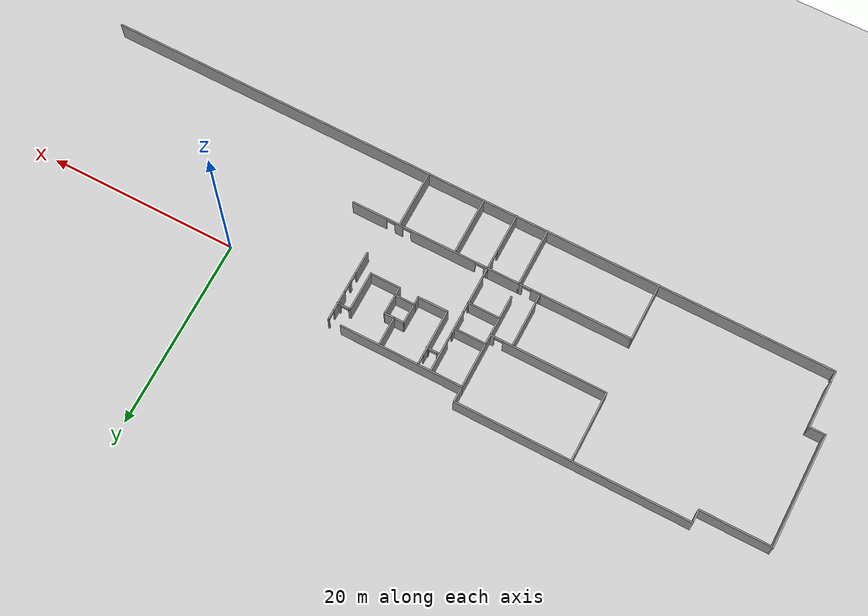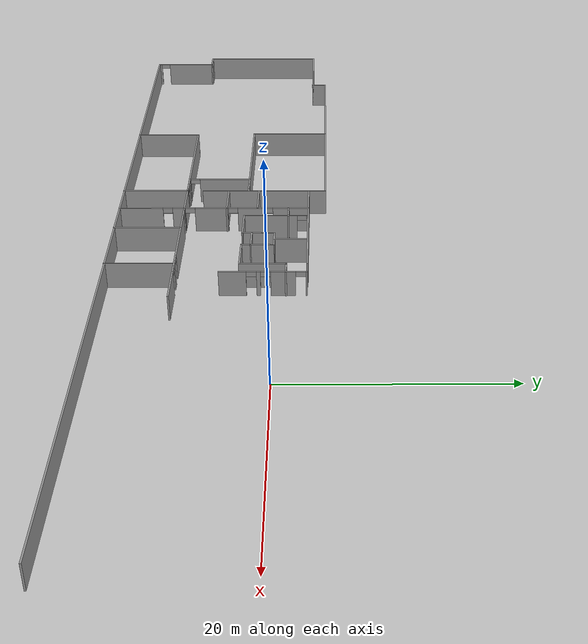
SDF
<sdf version="1.7">
 <world name="default">
  <model name="ground_plane">
   <static>1</static>
   <link name="link">
    <collision name="collision">
     <geometry><plane><normal>0 0 1</normal><size>100 100</size></plane></geometry>
     <surface><friction><ode><mu>100</mu><mu2>50</mu2></ode></friction></surface>
    </collision>
    <visual name="visual">
     <cast_shadows>0</cast_shadows>
     <geometry><plane><normal>0 0 1</normal><size>100 100</size></plane></geometry>
     <material>
      <script><uri>file://media/materials/scripts/gazebo.material</uri><name>Gazebo/Grey</name></script>
     </material>
    </visual>
   </link>
  </model>
  <model name="4th_floor_full">
   <pose>-18.2329 -5.23028 0 0 -0 3.13626</pose>
   <link name="Wall_100">
    <collision name="Wall_100_Collision">
     <geometry><box><size>1.18449 0.15 2.5</size></box></geometry>
     <pose>0 0 1.25 0 -0 0</pose>
    </collision>
    <visual name="Wall_100_Visual">
     <pose>0 0 1.25 0 -0 0</pose>
     <geometry><box><size>1.18449 0.15 2.5</size></box></geometry>
     <material>
      <script><uri>file://media/materials/scripts/gazebo.material</uri><name>Gazebo/Grey</name></script>
      <ambient>1 1 1 1</ambient>
     </material>
     <meta><layer>0</layer></meta>
    </visual>
    <pose>0.19827 -5.05997 0 0 -0 0.005985</pose>
   </link>
   <link name="Wall_101">
    <collision name="Wall_101_Collision">
     <geometry><box><size>2.2151 0.15 2.5</size></box></geometry>
     <pose>0 0 1.25 0 -0 0</pose>
    </collision>
    <visual name="Wall_101_Visual">
     <pose>0 0 1.25 0 -0 0</pose>
     <geometry><box><size>2.2151 0.15 2.5</size></box></geometry>
     <material>
      <script><uri>file://media/materials/scripts/gazebo.material</uri><name>Gazebo/Grey</name></script>
      <ambient>1 1 1 1</ambient>
     </material>
     <meta><layer>0</layer></meta>
    </visual>
    <pose>0.72251 -4.02435 0 0 -0 1.56402</pose>
   </link>
   <link name="Wall_103">
    <collision name="Wall_103_Collision">
     <geometry><box><size>1.14162 0.15 2.5</size></box></geometry>
     <pose>0 0 1.25 0 -0 0</pose>
    </collision>
    <visual name="Wall_103_Visual">
     <pose>0 0 1.25 0 -0 0</pose>
     <geometry><box><size>1.14162 0.15 2.5</size></box></geometry>
     <material>
      <script><uri>file://media/materials/scripts/gazebo.material</uri><name>Gazebo/Grey</name></script>
      <ambient>1 1 1 1</ambient>
     </material>
     <meta><layer>0</layer></meta>
    </visual>
    <pose>-0.814774 -5.05997 0 0 -0 3.13535</pose>
   </link>
   <link name="Wall_104">
    <collision name="Wall_104_Collision">
     <geometry><box><size>2.21041 0.15 2.5</size></box></geometry>
     <pose>0 0 1.25 0 -0 0</pose>
    </collision>
    <visual name="Wall_104_Visual">
     <pose>0 0 1.25 0 -0 0</pose>
     <geometry><box><size>2.21041 0.15 2.5</size></box></geometry>
     <material>
      <script><uri>file://media/materials/scripts/gazebo.material</uri><name>Gazebo/Grey</name></script>
      <ambient>1 1 1 1</ambient>
     </material>
     <meta><layer>0</layer></meta>
    </visual>
    <pose>-1.305 -4.02668 0 0 -0 1.56538</pose>
   </link>
   <link name="Wall_106">
    <collision name="Wall_106_Collision">
     <geometry><box><size>7.5 0.15 2.5</size></box></geometry>
     <pose>0 0 1.25 0 -0 0</pose>
    </collision>
    <visual name="Wall_106_Visual">
     <pose>0 0 1.25 0 -0 0</pose>
     <geometry><box><size>7.5 0.15 2.5</size></box></geometry>
     <material>
      <script><uri>file://media/materials/scripts/gazebo.material</uri><name>Gazebo/Grey</name></script>
      <ambient>1 1 1 1</ambient>
     </material>
     <meta><layer>0</layer></meta>
    </visual>
    <pose>20.6058 -5.98067 0 0 -0 1.5708</pose>
   </link>
   <link name="Wall_108">
    <pose>14.5558 -2.30567 0 0 -0 3.14159</pose>
    <visual name="Wall_108_Visual_0">
     <pose>-0.69819 0 1.25 0 -0 0</pose>
     <geometry><box><size>10.8536 0.15 2.5</size></box></geometry>
     <material>
      <script><uri>file://media/materials/scripts/gazebo.material</uri><name>Gazebo/Grey</name></script>
      <ambient>1 1 1 1</ambient>
     </material>
     <meta><layer>0</layer></meta>
    </visual>
    <collision name="Wall_108_Collision_0">
     <geometry><box><size>10.8536 0.15 2.5</size></box></geometry>
     <pose>-0.69819 0 1.25 0 -0 0</pose>
    </collision>
    <visual name="Wall_108_Visual_1">
     <pose>5.87681 0 1.25 0 -0 0</pose>
     <geometry><box><size>0.496381 0.15 2.5</size></box></geometry>
     <material>
      <script><uri>file://media/materials/scripts/gazebo.material</uri><name>Gazebo/Grey</name></script>
      <ambient>1 1 1 1</ambient>
     </material>
     <meta><layer>0</layer></meta>
    </visual>
    <collision name="Wall_108_Collision_1">
     <geometry><box><size>0.496381 0.15 2.5</size></box></geometry>
     <pose>5.87681 0 1.25 0 -0 0</pose>
    </collision>
    <visual name="Wall_108_Visual_2">
     <pose>5.17862 0 2.25 0 -0 0</pose>
     <geometry><box><size>0.9 0.15 0.5</size></box></geometry>
     <material>
      <script><uri>file://media/materials/scripts/gazebo.material</uri><name>Gazebo/Grey</name></script>
      <ambient>1 1 1 1</ambient>
     </material>
     <meta><layer>0</layer></meta>
    </visual>
    <collision name="Wall_108_Collision_2">
     <geometry><box><size>0.9 0.15 0.5</size></box></geometry>
     <pose>5.17862 0 2.25 0 -0 0</pose>
    </collision>
   </link>
   <link name="Wall_110">
    <collision name="Wall_110_Collision">
     <geometry><box><size>12 0.15 2.5</size></box></geometry>
     <pose>0 0 1.25 0 -0 0</pose>
    </collision>
    <visual name="Wall_110_Visual">
     <pose>0 0 1.25 0 -0 0</pose>
     <geometry><box><size>12 0.15 2.5</size></box></geometry>
     <material>
      <script><uri>file://media/materials/scripts/gazebo.material</uri><name>Gazebo/Grey</name></script>
      <ambient>1 1 1 1</ambient>
     </material>
     <meta><layer>0</layer></meta>
    </visual>
    <pose>40.1925 -2.41314 0 0 -0 1.5708</pose>
   </link>
   <link name="Wall_111">
    <collision name="Wall_111_Collision">
     <geometry><box><size>1.75 0.15 2.5</size></box></geometry>
     <pose>0 0 1.25 0 -0 0</pose>
    </collision>
    <visual name="Wall_111_Visual">
     <pose>0 0 1.25 0 -0 0</pose>
     <geometry><box><size>1.75 0.15 2.5</size></box></geometry>
     <material>
      <script><uri>file://media/materials/scripts/gazebo.material</uri><name>Gazebo/Grey</name></script>
      <ambient>1 1 1 1</ambient>
     </material>
     <meta><layer>0</layer></meta>
    </visual>
    <pose>39.3925 3.51186 0 0 -0 3.14159</pose>
   </link>
   <link name="Wall_113">
    <pose>38.5925 6.56186 0 0 -0 1.5708</pose>
    <visual name="Wall_113_Visual_0">
     <pose>-0.629068 0 1.25 0 -0 0</pose>
     <geometry><box><size>4.99186 0.15 2.5</size></box></geometry>
     <material>
      <script><uri>file://media/materials/scripts/gazebo.material</uri><name>Gazebo/Grey</name></script>
      <ambient>1 1 1 1</ambient>
     </material>
     <meta><layer>0</layer></meta>
    </visual>
    <collision name="Wall_113_Collision_0">
     <geometry><box><size>4.99186 0.15 2.5</size></box></geometry>
     <pose>-0.629068 0 1.25 0 -0 0</pose>
    </collision>
    <visual name="Wall_113_Visual_1">
     <pose>2.94593 0 1.25 0 -0 0</pose>
     <geometry><box><size>0.358137 0.15 2.5</size></box></geometry>
     <material>
      <script><uri>file://media/materials/scripts/gazebo.material</uri><name>Gazebo/Grey</name></script>
      <ambient>1 1 1 1</ambient>
     </material>
     <meta><layer>0</layer></meta>
    </visual>
    <collision name="Wall_113_Collision_1">
     <geometry><box><size>0.358137 0.15 2.5</size></box></geometry>
     <pose>2.94593 0 1.25 0 -0 0</pose>
    </collision>
    <visual name="Wall_113_Visual_2">
     <pose>2.31686 0 2.25 0 -0 0</pose>
     <geometry><box><size>0.9 0.15 0.5</size></box></geometry>
     <material>
      <script><uri>file://media/materials/scripts/gazebo.material</uri><name>Gazebo/Grey</name></script>
      <ambient>1 1 1 1</ambient>
     </material>
     <meta><layer>0</layer></meta>
    </visual>
    <collision name="Wall_113_Collision_2">
     <geometry><box><size>0.9 0.15 0.5</size></box></geometry>
     <pose>2.31686 0 2.25 0 -0 0</pose>
    </collision>
   </link>
   <link name="Wall_117">
    <collision name="Wall_117_Collision">
     <geometry><box><size>78.0898 0.15 2.5</size></box></geometry>
     <pose>0 0 1.25 0 -0 0</pose>
    </collision>
    <visual name="Wall_117_Visual">
     <pose>0 0 1.25 0 -0 0</pose>
     <geometry><box><size>78.0898 0.15 2.5</size></box></geometry>
     <material>
      <script><uri>file://media/materials/scripts/gazebo.material</uri><name>Gazebo/Grey</name></script>
      <ambient>1 1 1 1</ambient>
     </material>
     <meta><layer>0</layer></meta>
    </visual>
    <pose>-0.377401 9.63715 0 0 -0 -0.000649</pose>
   </link>
   <link name="Wall_121">
    <pose>14.4573 3.55629 0 0 -0 0</pose>
    <visual name="Wall_121_Visual_0">
     <pose>-5.76798 0 1.25 0 -0 0</pose>
     <geometry><box><size>0.464033 0.15 2.5</size></box></geometry>
     <material>
      <script><uri>file://media/materials/scripts/gazebo.material</uri><name>Gazebo/Grey</name></script>
      <ambient>1 1 1 1</ambient>
     </material>
     <meta><layer>0</layer></meta>
    </visual>
    <collision name="Wall_121_Collision_0">
     <geometry><box><size>0.464033 0.15 2.5</size></box></geometry>
     <pose>-5.76798 0 1.25 0 -0 0</pose>
    </collision>
    <visual name="Wall_121_Visual_1">
     <pose>0.682016 0 1.25 0 -0 0</pose>
     <geometry><box><size>10.636 0.15 2.5</size></box></geometry>
     <material>
      <script><uri>file://media/materials/scripts/gazebo.material</uri><name>Gazebo/Grey</name></script>
      <ambient>1 1 1 1</ambient>
     </material>
     <meta><layer>0</layer></meta>
    </visual>
    <collision name="Wall_121_Collision_1">
     <geometry><box><size>10.636 0.15 2.5</size></box></geometry>
     <pose>0.682016 0 1.25 0 -0 0</pose>
    </collision>
    <visual name="Wall_121_Visual_2">
     <pose>-5.08597 0 2.25 0 -0 0</pose>
     <geometry><box><size>0.9 0.15 0.5</size></box></geometry>
     <material>
      <script><uri>file://media/materials/scripts/gazebo.material</uri><name>Gazebo/Grey</name></script>
      <ambient>1 1 1 1</ambient>
     </material>
     <meta><layer>0</layer></meta>
    </visual>
    <collision name="Wall_121_Collision_2">
     <geometry><box><size>0.9 0.15 0.5</size></box></geometry>
     <pose>-5.08597 0 2.25 0 -0 0</pose>
    </collision>
   </link>
   <link name="Wall_122">
    <collision name="Wall_122_Collision">
     <geometry><box><size>6.25 0.15 2.5</size></box></geometry>
     <pose>0 0 1.25 0 -0 0</pose>
    </collision>
    <visual name="Wall_122_Visual">
     <pose>0 0 1.25 0 -0 0</pose>
     <geometry><box><size>6.25 0.15 2.5</size></box></geometry>
     <material>
      <script><uri>file://media/materials/scripts/gazebo.material</uri><name>Gazebo/Grey</name></script>
      <ambient>1 1 1 1</ambient>
     </material>
     <meta><layer>0</layer></meta>
    </visual>
    <pose>20.3823 6.60629 0 0 -0 1.5708</pose>
   </link>
   <link name="Wall_127">
    <pose>10.7997 0.638877 0 0 -0 1.5708</pose>
    <visual name="Wall_127_Visual_0">
     <pose>-0.541177 0 1.25 0 -0 0</pose>
     <geometry><box><size>4.91765 0.15 2.5</size></box></geometry>
     <material>
      <script><uri>file://media/materials/scripts/gazebo.material</uri><name>Gazebo/Grey</name></script>
      <ambient>1 1 1 1</ambient>
     </material>
     <meta><layer>0</layer></meta>
    </visual>
    <collision name="Wall_127_Collision_0">
     <geometry><box><size>4.91765 0.15 2.5</size></box></geometry>
     <pose>-0.541177 0 1.25 0 -0 0</pose>
    </collision>
    <visual name="Wall_127_Visual_1">
     <pose>2.90882 0 1.25 0 -0 0</pose>
     <geometry><box><size>0.182355 0.15 2.5</size></box></geometry>
     <material>
      <script><uri>file://media/materials/scripts/gazebo.material</uri><name>Gazebo/Grey</name></script>
      <ambient>1 1 1 1</ambient>
     </material>
     <meta><layer>0</layer></meta>
    </visual>
    <collision name="Wall_127_Collision_1">
     <geometry><box><size>0.182355 0.15 2.5</size></box></geometry>
     <pose>2.90882 0 1.25 0 -0 0</pose>
    </collision>
    <visual name="Wall_127_Visual_2">
     <pose>2.36764 0 2.25 0 -0 0</pose>
     <geometry><box><size>0.9 0.15 0.5</size></box></geometry>
     <material>
      <script><uri>file://media/materials/scripts/gazebo.material</uri><name>Gazebo/Grey</name></script>
      <ambient>1 1 1 1</ambient>
     </material>
     <meta><layer>0</layer></meta>
    </visual>
    <collision name="Wall_127_Collision_2">
     <geometry><box><size>0.9 0.15 0.5</size></box></geometry>
     <pose>2.36764 0 2.25 0 -0 0</pose>
    </collision>
   </link>
   <link name="Wall_129">
    <collision name="Wall_129_Collision">
     <geometry><box><size>6.25 0.15 2.5</size></box></geometry>
     <pose>0 0 1.25 0 -0 0</pose>
    </collision>
    <visual name="Wall_129_Visual">
     <pose>0 0 1.25 0 -0 0</pose>
     <geometry><box><size>6.25 0.15 2.5</size></box></geometry>
     <material>
      <script><uri>file://media/materials/scripts/gazebo.material</uri><name>Gazebo/Grey</name></script>
      <ambient>1 1 1 1</ambient>
     </material>
     <meta><layer>0</layer></meta>
    </visual>
    <pose>8.53225 6.60629 0 0 -0 1.5708</pose>
   </link>
   <link name="Wall_131">
    <pose>5.18225 6.60629 0 0 -0 1.5708</pose>
    <visual name="Wall_131_Visual_0">
     <pose>-2.53744 0 1.25 0 -0 0</pose>
     <geometry><box><size>1.17511 0.15 2.5</size></box></geometry>
     <material>
      <script><uri>file://media/materials/scripts/gazebo.material</uri><name>Gazebo/Grey</name></script>
      <ambient>1 1 1 1</ambient>
     </material>
     <meta><layer>0</layer></meta>
    </visual>
    <collision name="Wall_131_Collision_0">
     <geometry><box><size>1.17511 0.15 2.5</size></box></geometry>
     <pose>-2.53744 0 1.25 0 -0 0</pose>
    </collision>
    <visual name="Wall_131_Visual_1">
     <pose>1.03756 0 1.25 0 -0 0</pose>
     <geometry><box><size>4.17489 0.15 2.5</size></box></geometry>
     <material>
      <script><uri>file://media/materials/scripts/gazebo.material</uri><name>Gazebo/Grey</name></script>
      <ambient>1 1 1 1</ambient>
     </material>
     <meta><layer>0</layer></meta>
    </visual>
    <collision name="Wall_131_Collision_1">
     <geometry><box><size>4.17489 0.15 2.5</size></box></geometry>
     <pose>1.03756 0 1.25 0 -0 0</pose>
    </collision>
    <visual name="Wall_131_Visual_2">
     <pose>-1.49989 0 2.25 0 -0 0</pose>
     <geometry><box><size>0.9 0.15 0.5</size></box></geometry>
     <material>
      <script><uri>file://media/materials/scripts/gazebo.material</uri><name>Gazebo/Grey</name></script>
      <ambient>1 1 1 1</ambient>
     </material>
     <meta><layer>0</layer></meta>
    </visual>
    <collision name="Wall_131_Collision_2">
     <geometry><box><size>0.9 0.15 0.5</size></box></geometry>
     <pose>-1.49989 0 2.25 0 -0 0</pose>
    </collision>
   </link>
   <link name="Wall_141">
    <pose>-2.11775 3.55629 0 0 -0 3.14159</pose>
    <visual name="Wall_141_Visual_0">
     <pose>-7.14407 0 1.25 0 -0 0</pose>
     <geometry><box><size>0.461854 0.15 2.5</size></box></geometry>
     <material>
      <script><uri>file://media/materials/scripts/gazebo.material</uri><name>Gazebo/Grey</name></script>
      <ambient>1 1 1 1</ambient>
     </material>
     <meta><layer>0</layer></meta>
    </visual>
    <collision name="Wall_141_Collision_0">
     <geometry><box><size>0.461854 0.15 2.5</size></box></geometry>
     <pose>-7.14407 0 1.25 0 -0 0</pose>
    </collision>
    <visual name="Wall_141_Visual_1">
     <pose>-2.51914 0 1.25 0 -0 0</pose>
     <geometry><box><size>6.98802 0.15 2.5</size></box></geometry>
     <material>
      <script><uri>file://media/materials/scripts/gazebo.material</uri><name>Gazebo/Grey</name></script>
      <ambient>1 1 1 1</ambient>
     </material>
     <meta><layer>0</layer></meta>
    </visual>
    <collision name="Wall_141_Collision_1">
     <geometry><box><size>6.98802 0.15 2.5</size></box></geometry>
     <pose>-2.51914 0 1.25 0 -0 0</pose>
    </collision>
    <visual name="Wall_141_Visual_2">
     <pose>2.29937 0 1.25 0 -0 0</pose>
     <geometry><box><size>0.849006 0.15 2.5</size></box></geometry>
     <material>
      <script><uri>file://media/materials/scripts/gazebo.material</uri><name>Gazebo/Grey</name></script>
      <ambient>1 1 1 1</ambient>
     </material>
     <meta><layer>0</layer></meta>
    </visual>
    <collision name="Wall_141_Collision_2">
     <geometry><box><size>0.849006 0.15 2.5</size></box></geometry>
     <pose>2.29937 0 1.25 0 -0 0</pose>
    </collision>
    <visual name="Wall_141_Visual_3">
     <pose>5.49944 0 1.25 0 -0 0</pose>
     <geometry><box><size>3.75112 0.15 2.5</size></box></geometry>
     <material>
      <script><uri>file://media/materials/scripts/gazebo.material</uri><name>Gazebo/Grey</name></script>
      <ambient>1 1 1 1</ambient>
     </material>
     <meta><layer>0</layer></meta>
    </visual>
    <collision name="Wall_141_Collision_3">
     <geometry><box><size>3.75112 0.15 2.5</size></box></geometry>
     <pose>5.49944 0 1.25 0 -0 0</pose>
    </collision>
    <visual name="Wall_141_Visual_4">
     <pose>-6.46315 0 2.25 0 -0 0</pose>
     <geometry><box><size>0.9 0.15 0.5</size></box></geometry>
     <material>
      <script><uri>file://media/materials/scripts/gazebo.material</uri><name>Gazebo/Grey</name></script>
      <ambient>1 1 1 1</ambient>
     </material>
     <meta><layer>0</layer></meta>
    </visual>
    <collision name="Wall_141_Collision_4">
     <geometry><box><size>0.9 0.15 0.5</size></box></geometry>
     <pose>-6.46315 0 2.25 0 -0 0</pose>
    </collision>
    <visual name="Wall_141_Visual_5">
     <pose>1.42487 0 2.25 0 -0 0</pose>
     <geometry><box><size>0.9 0.15 0.5</size></box></geometry>
     <material>
      <script><uri>file://media/materials/scripts/gazebo.material</uri><name>Gazebo/Grey</name></script>
      <ambient>1 1 1 1</ambient>
     </material>
     <meta><layer>0</layer></meta>
    </visual>
    <collision name="Wall_141_Collision_5">
     <geometry><box><size>0.9 0.15 0.5</size></box></geometry>
     <pose>1.42487 0 2.25 0 -0 0</pose>
    </collision>
    <visual name="Wall_141_Visual_6">
     <pose>3.17388 0 2.25 0 -0 0</pose>
     <geometry><box><size>0.9 0.15 0.5</size></box></geometry>
     <material>
      <script><uri>file://media/materials/scripts/gazebo.material</uri><name>Gazebo/Grey</name></script>
      <ambient>1 1 1 1</ambient>
     </material>
     <meta><layer>0</layer></meta>
    </visual>
    <collision name="Wall_141_Collision_6">
     <geometry><box><size>0.9 0.15 0.5</size></box></geometry>
     <pose>3.17388 0 2.25 0 -0 0</pose>
    </collision>
   </link>
   <link name="Wall_144">
    <collision name="Wall_144_Collision">
     <geometry><box><size>6.25 0.15 2.5</size></box></geometry>
     <pose>0 0 1.25 0 -0 0</pose>
    </collision>
    <visual name="Wall_144_Visual">
     <pose>0 0 1.25 0 -0 0</pose>
     <geometry><box><size>6.25 0.15 2.5</size></box></geometry>
     <material>
      <script><uri>file://media/materials/scripts/gazebo.material</uri><name>Gazebo/Grey</name></script>
      <ambient>1 1 1 1</ambient>
     </material>
     <meta><layer>0</layer></meta>
    </visual>
    <pose>-4.36465 6.62819 0 0 -0 -1.5708</pose>
   </link>
   <link name="Wall_146">
    <collision name="Wall_146_Collision">
     <geometry><box><size>6.25 0.15 2.5</size></box></geometry>
     <pose>0 0 1.25 0 -0 0</pose>
    </collision>
    <visual name="Wall_146_Visual">
     <pose>0 0 1.25 0 -0 0</pose>
     <geometry><box><size>6.25 0.15 2.5</size></box></geometry>
     <material>
      <script><uri>file://media/materials/scripts/gazebo.material</uri><name>Gazebo/Grey</name></script>
      <ambient>1 1 1 1</ambient>
     </material>
     <meta><layer>0</layer></meta>
    </visual>
    <pose>1.65193 6.61069 0 0 -0 -1.5708</pose>
   </link>
   <link name="Wall_59">
    <pose>-5.71695 -4.25757 0 0 -0 -1.5708</pose>
    <visual name="Wall_59_Visual_0">
     <pose>-2.66556 0 1.25 0 -0 0</pose>
     <geometry><box><size>2.41888 0.15 2.5</size></box></geometry>
     <material>
      <script><uri>file://media/materials/scripts/gazebo.material</uri><name>Gazebo/Grey</name></script>
      <ambient>1 1 1 1</ambient>
     </material>
     <meta><layer>0</layer></meta>
    </visual>
    <collision name="Wall_59_Collision_0">
     <geometry><box><size>2.41888 0.15 2.5</size></box></geometry>
     <pose>-2.66556 0 1.25 0 -0 0</pose>
    </collision>
    <visual name="Wall_59_Visual_1">
     <pose>-0.386122 0 1.25 0 -0 0</pose>
     <geometry><box><size>0.34 0.15 2.5</size></box></geometry>
     <material>
      <script><uri>file://media/materials/scripts/gazebo.material</uri><name>Gazebo/Grey</name></script>
      <ambient>1 1 1 1</ambient>
     </material>
     <meta><layer>0</layer></meta>
    </visual>
    <collision name="Wall_59_Collision_1">
     <geometry><box><size>0.34 0.15 2.5</size></box></geometry>
     <pose>-0.386122 0 1.25 0 -0 0</pose>
    </collision>
    <visual name="Wall_59_Visual_2">
     <pose>1.76276 0 1.25 0 -0 0</pose>
     <geometry><box><size>2.15776 0.15 2.5</size></box></geometry>
     <material>
      <script><uri>file://media/materials/scripts/gazebo.material</uri><name>Gazebo/Grey</name></script>
      <ambient>1 1 1 1</ambient>
     </material>
     <meta><layer>0</layer></meta>
    </visual>
    <collision name="Wall_59_Collision_2">
     <geometry><box><size>2.15776 0.15 2.5</size></box></geometry>
     <pose>1.76276 0 1.25 0 -0 0</pose>
    </collision>
    <visual name="Wall_59_Visual_3">
     <pose>3.80832 0 1.25 0 -0 0</pose>
     <geometry><box><size>0.13336 0.15 2.5</size></box></geometry>
     <material>
      <script><uri>file://media/materials/scripts/gazebo.material</uri><name>Gazebo/Grey</name></script>
      <ambient>1 1 1 1</ambient>
     </material>
     <meta><layer>0</layer></meta>
    </visual>
    <collision name="Wall_59_Collision_3">
     <geometry><box><size>0.13336 0.15 2.5</size></box></geometry>
     <pose>3.80832 0 1.25 0 -0 0</pose>
    </collision>
    <visual name="Wall_59_Visual_4">
     <pose>-1.00612 0 2.25 0 -0 0</pose>
     <geometry><box><size>0.9 0.15 0.5</size></box></geometry>
     <material>
      <script><uri>file://media/materials/scripts/gazebo.material</uri><name>Gazebo/Grey</name></script>
      <ambient>1 1 1 1</ambient>
     </material>
     <meta><layer>0</layer></meta>
    </visual>
    <collision name="Wall_59_Collision_4">
     <geometry><box><size>0.9 0.15 0.5</size></box></geometry>
     <pose>-1.00612 0 2.25 0 -0 0</pose>
    </collision>
    <visual name="Wall_59_Visual_5">
     <pose>0.233878 0 2.25 0 -0 0</pose>
     <geometry><box><size>0.9 0.15 0.5</size></box></geometry>
     <material>
      <script><uri>file://media/materials/scripts/gazebo.material</uri><name>Gazebo/Grey</name></script>
      <ambient>1 1 1 1</ambient>
     </material>
     <meta><layer>0</layer></meta>
    </visual>
    <collision name="Wall_59_Collision_5">
     <geometry><box><size>0.9 0.15 0.5</size></box></geometry>
     <pose>0.233878 0 2.25 0 -0 0</pose>
    </collision>
    <visual name="Wall_59_Visual_6">
     <pose>3.29164 0 2.25 0 -0 0</pose>
     <geometry><box><size>0.9 0.15 0.5</size></box></geometry>
     <material>
      <script><uri>file://media/materials/scripts/gazebo.material</uri><name>Gazebo/Grey</name></script>
      <ambient>1 1 1 1</ambient>
     </material>
     <meta><layer>0</layer></meta>
    </visual>
    <collision name="Wall_59_Collision_6">
     <geometry><box><size>0.9 0.15 0.5</size></box></geometry>
     <pose>3.29164 0 2.25 0 -0 0</pose>
    </collision>
   </link>
   <link name="Wall_66">
    <pose>-5.07442 -6.2465 0 0 -0 0</pose>
    <visual name="Wall_66_Visual_0">
     <pose>-0.564886 0 1.25 0 -0 0</pose>
     <geometry><box><size>0.370229 0.15 2.5</size></box></geometry>
     <material>
      <script><uri>file://media/materials/scripts/gazebo.material</uri><name>Gazebo/Grey</name></script>
      <ambient>1 1 1 1</ambient>
     </material>
     <meta><layer>0</layer></meta>
    </visual>
    <collision name="Wall_66_Collision_0">
     <geometry><box><size>0.370229 0.15 2.5</size></box></geometry>
     <pose>-0.564886 0 1.25 0 -0 0</pose>
    </collision>
    <visual name="Wall_66_Visual_1">
     <pose>0.635114 0 1.25 0 -0 0</pose>
     <geometry><box><size>0.229771 0.15 2.5</size></box></geometry>
     <material>
      <script><uri>file://media/materials/scripts/gazebo.material</uri><name>Gazebo/Grey</name></script>
      <ambient>1 1 1 1</ambient>
     </material>
     <meta><layer>0</layer></meta>
    </visual>
    <collision name="Wall_66_Collision_1">
     <geometry><box><size>0.229771 0.15 2.5</size></box></geometry>
     <pose>0.635114 0 1.25 0 -0 0</pose>
    </collision>
    <visual name="Wall_66_Visual_2">
     <pose>0.070229 0 2.25 0 -0 0</pose>
     <geometry><box><size>0.9 0.15 0.5</size></box></geometry>
     <material>
      <script><uri>file://media/materials/scripts/gazebo.material</uri><name>Gazebo/Grey</name></script>
      <ambient>1 1 1 1</ambient>
     </material>
     <meta><layer>0</layer></meta>
    </visual>
    <collision name="Wall_66_Collision_2">
     <geometry><box><size>0.9 0.15 0.5</size></box></geometry>
     <pose>0.070229 0 2.25 0 -0 0</pose>
    </collision>
   </link>
   <link name="Wall_67">
    <collision name="Wall_67_Collision">
     <geometry><box><size>4.25 0.15 2.5</size></box></geometry>
     <pose>0 0 1.25 0 -0 0</pose>
    </collision>
    <visual name="Wall_67_Visual">
     <pose>0 0 1.25 0 -0 0</pose>
     <geometry><box><size>4.25 0.15 2.5</size></box></geometry>
     <material>
      <script><uri>file://media/materials/scripts/gazebo.material</uri><name>Gazebo/Grey</name></script>
      <ambient>1 1 1 1</ambient>
     </material>
     <meta><layer>0</layer></meta>
    </visual>
    <pose>-4.39942 -4.1965 0 0 -0 1.5708</pose>
   </link>
   <link name="Wall_68">
    <collision name="Wall_68_Collision">
     <geometry><box><size>3.25 0.15 2.5</size></box></geometry>
     <pose>0 0 1.25 0 -0 0</pose>
    </collision>
    <visual name="Wall_68_Visual">
     <pose>0 0 1.25 0 -0 0</pose>
     <geometry><box><size>3.25 0.15 2.5</size></box></geometry>
     <material>
      <script><uri>file://media/materials/scripts/gazebo.material</uri><name>Gazebo/Grey</name></script>
      <ambient>1 1 1 1</ambient>
     </material>
     <meta><layer>0</layer></meta>
    </visual>
    <pose>-2.84942 -2.1465 0 0 -0 0</pose>
   </link>
   <link name="Wall_69">
    <collision name="Wall_69_Collision">
     <geometry><box><size>1 0.15 2.5</size></box></geometry>
     <pose>0 0 1.25 0 -0 0</pose>
    </collision>
    <visual name="Wall_69_Visual">
     <pose>0 0 1.25 0 -0 0</pose>
     <geometry><box><size>1 0.15 2.5</size></box></geometry>
     <material>
      <script><uri>file://media/materials/scripts/gazebo.material</uri><name>Gazebo/Grey</name></script>
      <ambient>1 1 1 1</ambient>
     </material>
     <meta><layer>0</layer></meta>
    </visual>
    <pose>-1.29942 -2.5715 0 0 -0 -1.5708</pose>
   </link>
   <link name="Wall_70">
    <collision name="Wall_70_Collision">
     <geometry><box><size>2.17934 0.15 2.5</size></box></geometry>
     <pose>0 0 1.25 0 -0 0</pose>
    </collision>
    <visual name="Wall_70_Visual">
     <pose>0 0 1.25 0 -0 0</pose>
     <geometry><box><size>2.17934 0.15 2.5</size></box></geometry>
     <material>
      <script><uri>file://media/materials/scripts/gazebo.material</uri><name>Gazebo/Grey</name></script>
      <ambient>1 1 1 1</ambient>
     </material>
     <meta><layer>0</layer></meta>
    </visual>
    <pose>-0.284956 -2.99416 0 0 -0 0.002303</pose>
   </link>
   <link name="Wall_71">
    <collision name="Wall_71_Collision">
     <geometry><box><size>1 0.15 2.5</size></box></geometry>
     <pose>0 0 1.25 0 -0 0</pose>
    </collision>
    <visual name="Wall_71_Visual">
     <pose>0 0 1.25 0 -0 0</pose>
     <geometry><box><size>1 0.15 2.5</size></box></geometry>
     <material>
      <script><uri>file://media/materials/scripts/gazebo.material</uri><name>Gazebo/Grey</name></script>
      <ambient>1 1 1 1</ambient>
     </material>
     <meta><layer>0</layer></meta>
    </visual>
    <pose>0.729508 -2.56682 0 0 -0 1.5708</pose>
   </link>
   <link name="Wall_72">
    <collision name="Wall_72_Collision">
     <geometry><box><size>3.25 0.15 2.5</size></box></geometry>
     <pose>0 0 1.25 0 -0 0</pose>
    </collision>
    <visual name="Wall_72_Visual">
     <pose>0 0 1.25 0 -0 0</pose>
     <geometry><box><size>3.25 0.15 2.5</size></box></geometry>
     <material>
      <script><uri>file://media/materials/scripts/gazebo.material</uri><name>Gazebo/Grey</name></script>
      <ambient>1 1 1 1</ambient>
     </material>
     <meta><layer>0</layer></meta>
    </visual>
    <pose>2.27951 -2.14182 0 0 -0 0</pose>
   </link>
   <link name="Wall_77">
    <collision name="Wall_77_Collision">
     <geometry><box><size>13 0.15 2.5</size></box></geometry>
     <pose>0 0 1.25 0 -0 0</pose>
    </collision>
    <visual name="Wall_77_Visual">
     <pose>0 0 1.25 0 -0 0</pose>
     <geometry><box><size>13 0.15 2.5</size></box></geometry>
     <material>
      <script><uri>file://media/materials/scripts/gazebo.material</uri><name>Gazebo/Grey</name></script>
      <ambient>1 1 1 1</ambient>
     </material>
     <meta><layer>0</layer></meta>
    </visual>
    <pose>2.06747 -8.08814 0 0 -0 0</pose>
   </link>
   <link name="Wall_78">
    <collision name="Wall_78_Collision">
     <geometry><box><size>1.75 0.15 2.5</size></box></geometry>
     <pose>0 0 1.25 0 -0 0</pose>
    </collision>
    <visual name="Wall_78_Visual">
     <pose>0 0 1.25 0 -0 0</pose>
     <geometry><box><size>1.75 0.15 2.5</size></box></geometry>
     <material>
      <script><uri>file://media/materials/scripts/gazebo.material</uri><name>Gazebo/Grey</name></script>
      <ambient>1 1 1 1</ambient>
     </material>
     <meta><layer>0</layer></meta>
    </visual>
    <pose>8.49247 -8.88814 0 0 -0 -1.5708</pose>
   </link>
   <link name="Wall_80">
    <pose>3.82951 -5.06682 0 0 -0 -1.5708</pose>
    <visual name="Wall_80_Visual_0">
     <pose>-0.504881 0 1.25 0 -0 0</pose>
     <geometry><box><size>4.99024 0.15 2.5</size></box></geometry>
     <material>
      <script><uri>file://media/materials/scripts/gazebo.material</uri><name>Gazebo/Grey</name></script>
      <ambient>1 1 1 1</ambient>
     </material>
     <meta><layer>0</layer></meta>
    </visual>
    <collision name="Wall_80_Collision_0">
     <geometry><box><size>4.99024 0.15 2.5</size></box></geometry>
     <pose>-0.504881 0 1.25 0 -0 0</pose>
    </collision>
    <visual name="Wall_80_Visual_1">
     <pose>2.94512 0 1.25 0 -0 0</pose>
     <geometry><box><size>0.109763 0.15 2.5</size></box></geometry>
     <material>
      <script><uri>file://media/materials/scripts/gazebo.material</uri><name>Gazebo/Grey</name></script>
      <ambient>1 1 1 1</ambient>
     </material>
     <meta><layer>0</layer></meta>
    </visual>
    <collision name="Wall_80_Collision_1">
     <geometry><box><size>0.109763 0.15 2.5</size></box></geometry>
     <pose>2.94512 0 1.25 0 -0 0</pose>
    </collision>
    <visual name="Wall_80_Visual_2">
     <pose>2.44024 0 2.25 0 -0 0</pose>
     <geometry><box><size>0.9 0.15 0.5</size></box></geometry>
     <material>
      <script><uri>file://media/materials/scripts/gazebo.material</uri><name>Gazebo/Grey</name></script>
      <ambient>1 1 1 1</ambient>
     </material>
     <meta><layer>0</layer></meta>
    </visual>
    <collision name="Wall_80_Collision_2">
     <geometry><box><size>0.9 0.15 0.5</size></box></geometry>
     <pose>2.44024 0 2.25 0 -0 0</pose>
    </collision>
   </link>
   <link name="Wall_82">
    <collision name="Wall_82_Collision">
     <geometry><box><size>24.5 0.15 2.5</size></box></geometry>
     <pose>0 0 1.25 0 -0 0</pose>
    </collision>
    <visual name="Wall_82_Visual">
     <pose>0 0 1.25 0 -0 0</pose>
     <geometry><box><size>24.5 0.15 2.5</size></box></geometry>
     <material>
      <script><uri>file://media/materials/scripts/gazebo.material</uri><name>Gazebo/Grey</name></script>
      <ambient>1 1 1 1</ambient>
     </material>
     <meta><layer>0</layer></meta>
    </visual>
    <pose>20.6675 -9.68814 0 0 -0 0</pose>
   </link>
   <link name="Wall_83">
    <collision name="Wall_83_Collision">
     <geometry><box><size>1.5 0.15 2.5</size></box></geometry>
     <pose>0 0 1.25 0 -0 0</pose>
    </collision>
    <visual name="Wall_83_Visual">
     <pose>0 0 1.25 0 -0 0</pose>
     <geometry><box><size>1.5 0.15 2.5</size></box></geometry>
     <material>
      <script><uri>file://media/materials/scripts/gazebo.material</uri><name>Gazebo/Grey</name></script>
      <ambient>1 1 1 1</ambient>
     </material>
     <meta><layer>0</layer></meta>
    </visual>
    <pose>32.8425 -9.01314 0 0 -0 1.5708</pose>
   </link>
   <link name="Wall_85">
    <collision name="Wall_85_Collision">
     <geometry><box><size>7.5 0.15 2.5</size></box></geometry>
     <pose>0 0 1.25 0 -0 0</pose>
    </collision>
    <visual name="Wall_85_Visual">
     <pose>0 0 1.25 0 -0 0</pose>
     <geometry><box><size>7.5 0.15 2.5</size></box></geometry>
     <material>
      <script><uri>file://media/materials/scripts/gazebo.material</uri><name>Gazebo/Grey</name></script>
      <ambient>1 1 1 1</ambient>
     </material>
     <meta><layer>0</layer></meta>
    </visual>
    <pose>36.5175 -8.33814 0 0 -0 0</pose>
   </link>
   <link name="Wall_87">
    <pose>5.18225 -2.24371 0 0 -0 1.5708</pose>
    <visual name="Wall_87_Visual_0">
     <pose>-4.19424 0 1.25 0 -0 0</pose>
     <geometry><box><size>3.36153 0.15 2.5</size></box></geometry>
     <material>
      <script><uri>file://media/materials/scripts/gazebo.material</uri><name>Gazebo/Grey</name></script>
      <ambient>1 1 1 1</ambient>
     </material>
     <meta><layer>0</layer></meta>
    </visual>
    <collision name="Wall_87_Collision_0">
     <geometry><box><size>3.36153 0.15 2.5</size></box></geometry>
     <pose>-4.19424 0 1.25 0 -0 0</pose>
    </collision>
    <visual name="Wall_87_Visual_1">
     <pose>-0.421198 0 1.25 0 -0 0</pose>
     <geometry><box><size>2.38455 0.15 2.5</size></box></geometry>
     <material>
      <script><uri>file://media/materials/scripts/gazebo.material</uri><name>Gazebo/Grey</name></script>
      <ambient>1 1 1 1</ambient>
     </material>
     <meta><layer>0</layer></meta>
    </visual>
    <collision name="Wall_87_Collision_1">
     <geometry><box><size>2.38455 0.15 2.5</size></box></geometry>
     <pose>-0.421198 0 1.25 0 -0 0</pose>
    </collision>
    <visual name="Wall_87_Visual_2">
     <pose>3.23714 0 1.25 0 -0 0</pose>
     <geometry><box><size>3.13214 0.15 2.5</size></box></geometry>
     <material>
      <script><uri>file://media/materials/scripts/gazebo.material</uri><name>Gazebo/Grey</name></script>
      <ambient>1 1 1 1</ambient>
     </material>
     <meta><layer>0</layer></meta>
    </visual>
    <collision name="Wall_87_Collision_2">
     <geometry><box><size>3.13214 0.15 2.5</size></box></geometry>
     <pose>3.23714 0 1.25 0 -0 0</pose>
    </collision>
    <visual name="Wall_87_Visual_3">
     <pose>5.78911 0 1.25 0 -0 0</pose>
     <geometry><box><size>0.171786 0.15 2.5</size></box></geometry>
     <material>
      <script><uri>file://media/materials/scripts/gazebo.material</uri><name>Gazebo/Grey</name></script>
      <ambient>1 1 1 1</ambient>
     </material>
     <meta><layer>0</layer></meta>
    </visual>
    <collision name="Wall_87_Collision_3">
     <geometry><box><size>0.171786 0.15 2.5</size></box></geometry>
     <pose>5.78911 0 1.25 0 -0 0</pose>
    </collision>
    <visual name="Wall_87_Visual_4">
     <pose>-2.06347 0 2.25 0 -0 0</pose>
     <geometry><box><size>0.9 0.15 0.5</size></box></geometry>
     <material>
      <script><uri>file://media/materials/scripts/gazebo.material</uri><name>Gazebo/Grey</name></script>
      <ambient>1 1 1 1</ambient>
     </material>
     <meta><layer>0</layer></meta>
    </visual>
    <collision name="Wall_87_Collision_4">
     <geometry><box><size>0.9 0.15 0.5</size></box></geometry>
     <pose>-2.06347 0 2.25 0 -0 0</pose>
    </collision>
    <visual name="Wall_87_Visual_5">
     <pose>1.22107 0 2.25 0 -0 0</pose>
     <geometry><box><size>0.9 0.15 0.5</size></box></geometry>
     <material>
      <script><uri>file://media/materials/scripts/gazebo.material</uri><name>Gazebo/Grey</name></script>
      <ambient>1 1 1 1</ambient>
     </material>
     <meta><layer>0</layer></meta>
    </visual>
    <collision name="Wall_87_Collision_5">
     <geometry><box><size>0.9 0.15 0.5</size></box></geometry>
     <pose>1.22107 0 2.25 0 -0 0</pose>
    </collision>
    <visual name="Wall_87_Visual_6">
     <pose>5.25321 0 2.25 0 -0 0</pose>
     <geometry><box><size>0.9 0.15 0.5</size></box></geometry>
     <material>
      <script><uri>file://media/materials/scripts/gazebo.material</uri><name>Gazebo/Grey</name></script>
      <ambient>1 1 1 1</ambient>
     </material>
     <meta><layer>0</layer></meta>
    </visual>
    <collision name="Wall_87_Collision_6">
     <geometry><box><size>0.9 0.15 0.5</size></box></geometry>
     <pose>5.25321 0 2.25 0 -0 0</pose>
    </collision>
   </link>
   <link name="Wall_88">
    <collision name="Wall_88_Collision">
     <geometry><box><size>3.5 0.15 2.5</size></box></geometry>
     <pose>0 0 1.25 0 -0 0</pose>
    </collision>
    <visual name="Wall_88_Visual">
     <pose>0 0 1.25 0 -0 0</pose>
     <geometry><box><size>3.5 0.15 2.5</size></box></geometry>
     <material>
      <script><uri>file://media/materials/scripts/gazebo.material</uri><name>Gazebo/Grey</name></script>
      <ambient>1 1 1 1</ambient>
     </material>
     <meta><layer>0</layer></meta>
    </visual>
    <pose>6.85725 3.55629 0 0 -0 0</pose>
   </link>
   <link name="Wall_90">
    <collision name="Wall_90_Collision">
     <geometry><box><size>10.25 0.15 2.5</size></box></geometry>
     <pose>0 0 1.25 0 -0 0</pose>
    </collision>
    <visual name="Wall_90_Visual">
     <pose>0 0 1.25 0 -0 0</pose>
     <geometry><box><size>10.25 0.15 2.5</size></box></geometry>
     <material>
      <script><uri>file://media/materials/scripts/gazebo.material</uri><name>Gazebo/Grey</name></script>
      <ambient>1 1 1 1</ambient>
     </material>
     <meta><layer>0</layer></meta>
    </visual>
    <pose>8.49247 -3.03814 0 0 -0 1.5708</pose>
   </link>
   <link name="Wall_92">
    <collision name="Wall_92_Collision">
     <geometry><box><size>3.4 0.15 2.5</size></box></geometry>
     <pose>0 0 1.25 0 -0 0</pose>
    </collision>
    <visual name="Wall_92_Visual">
     <pose>0 0 1.25 0 -0 0</pose>
     <geometry><box><size>3.4 0.15 2.5</size></box></geometry>
     <material>
      <script><uri>file://media/materials/scripts/gazebo.material</uri><name>Gazebo/Grey</name></script>
      <ambient>1 1 1 1</ambient>
     </material>
     <meta><layer>0</layer></meta>
    </visual>
    <pose>6.83736 -3.31256 0 0 -0 3.14159</pose>
   </link>
   <link name="Wall_94">
    <collision name="Wall_94_Collision">
     <geometry><box><size>3.4 0.15 2.5</size></box></geometry>
     <pose>0 0 1.25 0 -0 0</pose>
    </collision>
    <visual name="Wall_94_Visual">
     <pose>0 0 1.25 0 -0 0</pose>
     <geometry><box><size>3.4 0.15 2.5</size></box></geometry>
     <material>
      <script><uri>file://media/materials/scripts/gazebo.material</uri><name>Gazebo/Grey</name></script>
      <ambient>1 1 1 1</ambient>
     </material>
     <meta><layer>0</layer></meta>
    </visual>
    <pose>6.7911 -0.421238 0 0 -0 3.14159</pose>
   </link>
   <link name="Wall_96">
    <pose>4.45655 -6.22702 0 0 -0 3.14159</pose>
    <visual name="Wall_96_Visual_0">
     <pose>-0.578976 0 1.25 0 -0 0</pose>
     <geometry><box><size>0.342049 0.15 2.5</size></box></geometry>
     <material>
      <script><uri>file://media/materials/scripts/gazebo.material</uri><name>Gazebo/Grey</name></script>
      <ambient>1 1 1 1</ambient>
     </material>
     <meta><layer>0</layer></meta>
    </visual>
    <collision name="Wall_96_Collision_0">
     <geometry><box><size>0.342049 0.15 2.5</size></box></geometry>
     <pose>-0.578976 0 1.25 0 -0 0</pose>
    </collision>
    <visual name="Wall_96_Visual_1">
     <pose>0.621024 0 1.25 0 -0 0</pose>
     <geometry><box><size>0.257951 0.15 2.5</size></box></geometry>
     <material>
      <script><uri>file://media/materials/scripts/gazebo.material</uri><name>Gazebo/Grey</name></script>
      <ambient>1 1 1 1</ambient>
     </material>
     <meta><layer>0</layer></meta>
    </visual>
    <collision name="Wall_96_Collision_1">
     <geometry><box><size>0.257951 0.15 2.5</size></box></geometry>
     <pose>0.621024 0 1.25 0 -0 0</pose>
    </collision>
    <visual name="Wall_96_Visual_2">
     <pose>0.042049 0 2.25 0 -0 0</pose>
     <geometry><box><size>0.9 0.15 0.5</size></box></geometry>
     <material>
      <script><uri>file://media/materials/scripts/gazebo.material</uri><name>Gazebo/Grey</name></script>
      <ambient>1 1 1 1</ambient>
     </material>
     <meta><layer>0</layer></meta>
    </visual>
    <collision name="Wall_96_Collision_2">
     <geometry><box><size>0.9 0.15 0.5</size></box></geometry>
     <pose>0.042049 0 2.25 0 -0 0</pose>
    </collision>
   </link>
   <link name="Wall_98">
    <collision name="Wall_98_Collision">
     <geometry><box><size>3.15707 0.15 2.5</size></box></geometry>
     <pose>0 0 1.25 0 -0 0</pose>
    </collision>
    <visual name="Wall_98_Visual">
     <pose>0 0 1.25 0 -0 0</pose>
     <geometry><box><size>3.15707 0.15 2.5</size></box></geometry>
     <material>
      <script><uri>file://media/materials/scripts/gazebo.material</uri><name>Gazebo/Grey</name></script>
      <ambient>1 1 1 1</ambient>
     </material>
     <meta><layer>0</layer></meta>
    </visual>
    <pose>-0.307408 -6.56655 0 0 -0 -1.5631</pose>
   </link>
   <static>1</static>
  </model>
 </world>
</sdf>
